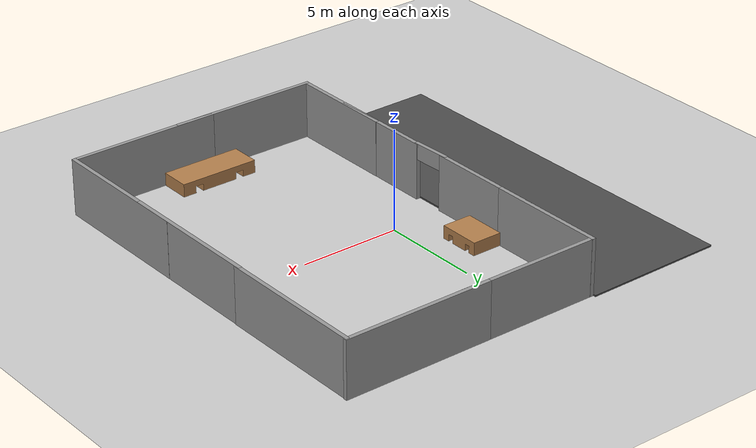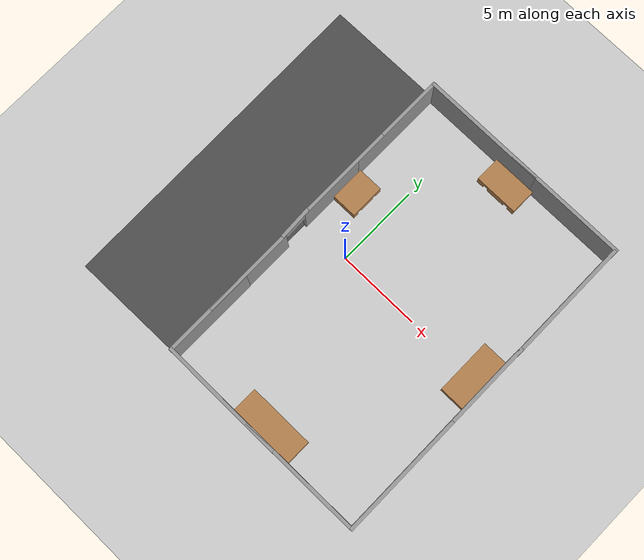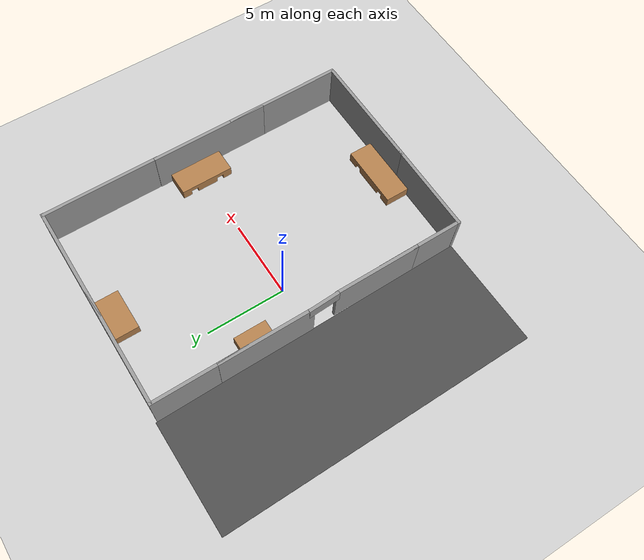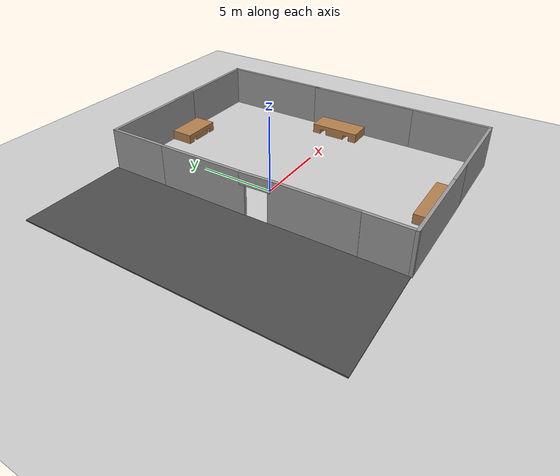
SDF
<sdf version="1.7">
 <world name="default">
  <light name="sun" type="directional">
   <pose>0 0 10 0 -0 0</pose>
   <diffuse>0.8 0.8 0.8 1</diffuse>
   <specular>0.2 0.2 0.2 1</specular>
   <attenuation>
    <range>1000</range>
    <constant>0.9</constant>
    <linear>0.01</linear>
    <quadratic>0.001</quadratic>
   </attenuation>
   <direction>-0.5 0.1 -0.9</direction>
   <spot><inner_angle>0</inner_angle><outer_angle>0</outer_angle><falloff>0</falloff></spot>
  </light>
  <model name="ground_plane">
   <static>1</static>
   <link name="link">
    <collision name="collision">
     <geometry><plane><normal>0 0 1</normal><size>100 100</size></plane></geometry>
     <surface><friction><ode><mu>100</mu><mu2>50</mu2></ode></friction></surface>
    </collision>
    <visual name="visual">
     <cast_shadows>0</cast_shadows>
     <geometry><plane><normal>0 0 1</normal><size>100 100</size></plane></geometry>
     <material>
      <script><uri>file://media/materials/scripts/gazebo.material</uri><name>Gazebo/Grey</name></script>
     </material>
    </visual>
   </link>
  </model>
  <gravity>0 0 -9.8</gravity>
  <magnetic_field>6e-06 2.3e-05 -4.2e-05</magnetic_field>
  <atmosphere type="adiabatic"/>
  <physics type="ode">
   <max_step_size>0.001</max_step_size>
   <real_time_factor>1</real_time_factor>
   <real_time_update_rate>1000</real_time_update_rate>
  </physics>
  <scene><ambient>0.4 0.4 0.4 1</ambient><background>0.7 0.7 0.7 1</background><shadows>1</shadows></scene>
  <spherical_coordinates>
   <surface_model>EARTH_WGS84</surface_model>
   <latitude_deg>0</latitude_deg>
   <longitude_deg>0</longitude_deg>
   <elevation>0</elevation>
   <heading_deg>0</heading_deg>
  </spherical_coordinates>
  <model name="grey_wall">
   <static>1</static>
   <link name="link">
    <pose>0 0 1.4 0 -0 0</pose>
    <collision name="collision"><geometry><box><size>7.5 0.2 2.8</size></box></geometry></collision>
    <visual name="visual">
     <cast_shadows>0</cast_shadows>
     <geometry><box><size>7.5 0.2 2.8</size></box></geometry>
     <material>
      <script>
       <uri>model://grey_wall/materials/scripts</uri>
       <uri>model://grey_wall/materials/textures</uri>
       <name>vrc/grey_wall</name>
      </script>
     </material>
    </visual>
   </link>
   <pose>6.56813 9.72694 0 0 -0 0</pose>
  </model>
  <model name="grey_wall_0">
   <static>1</static>
   <link name="link">
    <pose>0 0 1.4 0 -0 0</pose>
    <collision name="collision"><geometry><box><size>7.5 0.2 2.8</size></box></geometry></collision>
    <visual name="visual">
     <cast_shadows>0</cast_shadows>
     <geometry><box><size>7.5 0.2 2.8</size></box></geometry>
     <material>
      <script>
       <uri>model://grey_wall/materials/scripts</uri>
       <uri>model://grey_wall/materials/textures</uri>
       <name>vrc/grey_wall</name>
      </script>
     </material>
    </visual>
   </link>
   <pose>0.835174 9.72365 0 0 -0 0</pose>
  </model>
  <model name="grey_wall_1">
   <static>1</static>
   <link name="link">
    <pose>0 0 1.4 0 -0 0</pose>
    <collision name="collision"><geometry><box><size>7.5 0.2 2.8</size></box></geometry></collision>
    <visual name="visual">
     <cast_shadows>0</cast_shadows>
     <geometry><box><size>7.5 0.2 2.8</size></box></geometry>
     <material>
      <script>
       <uri>model://grey_wall/materials/scripts</uri>
       <uri>model://grey_wall/materials/textures</uri>
       <name>vrc/grey_wall</name>
      </script>
     </material>
    </visual>
   </link>
   <pose>6.47343 -10.0659 0 0 -0 0</pose>
  </model>
  <model name="grey_wall_2">
   <static>1</static>
   <link name="link">
    <pose>0 0 1.4 0 -0 0</pose>
    <collision name="collision"><geometry><box><size>7.5 0.2 2.8</size></box></geometry></collision>
    <visual name="visual">
     <cast_shadows>0</cast_shadows>
     <geometry><box><size>7.5 0.2 2.8</size></box></geometry>
     <material>
      <script>
       <uri>model://grey_wall/materials/scripts</uri>
       <uri>model://grey_wall/materials/textures</uri>
       <name>vrc/grey_wall</name>
      </script>
     </material>
    </visual>
   </link>
   <pose>0.933666 -10.0566 -0 0 0 -0.005759</pose>
  </model>
  <model name="grey_wall_3">
   <static>1</static>
   <link name="link">
    <pose>0 0 1.4 0 -0 0</pose>
    <collision name="collision"><geometry><box><size>7.5 0.2 2.8</size></box></geometry></collision>
    <visual name="visual">
     <cast_shadows>0</cast_shadows>
     <geometry><box><size>7.5 0.2 2.8</size></box></geometry>
     <material>
      <script>
       <uri>model://grey_wall/materials/scripts</uri>
       <uri>model://grey_wall/materials/textures</uri>
       <name>vrc/grey_wall</name>
      </script>
     </material>
    </visual>
   </link>
   <pose>10.1917 -1.19868 0 0 -0 1.5731</pose>
  </model>
  <model name="grey_wall_3_clone">
   <static>1</static>
   <link name="link">
    <pose>0 0 1.4 0 -0 0</pose>
    <collision name="collision"><geometry><box><size>7.5 0.2 2.8</size></box></geometry></collision>
    <visual name="visual">
     <cast_shadows>0</cast_shadows>
     <geometry><box><size>7.5 0.2 2.8</size></box></geometry>
     <material>
      <script>
       <uri>model://grey_wall/materials/scripts</uri>
       <uri>model://grey_wall/materials/textures</uri>
       <name>vrc/grey_wall</name>
      </script>
     </material>
    </visual>
   </link>
   <pose>10.1984 6.01912 0 0 -0 1.5731</pose>
  </model>
  <model name="grey_wall_3_clone_0">
   <static>1</static>
   <link name="link">
    <pose>0 0 1.4 0 -0 0</pose>
    <collision name="collision"><geometry><box><size>6.5 0.2 2.8</size></box></geometry></collision>
    <visual name="visual">
     <cast_shadows>0</cast_shadows>
     <geometry><box><size>6 0.2 2.8</size></box></geometry>
     <material>
      <script>
       <uri>model://grey_wall/materials/scripts</uri>
       <uri>model://grey_wall/materials/textures</uri>
       <name>vrc/grey_wall</name>
      </script>
     </material>
    </visual>
   </link>
   <pose>-2.84249 2.78175 0 0 -0 1.5731</pose>
  </model>
  <model name="grey_wall_3_clone_1">
   <static>1</static>
   <link name="link">
    <pose>0 0 1.4 0 -0 0</pose>
    <collision name="collision"><geometry><box><size>5.5 0.2 2.8</size></box></geometry></collision>
    <visual name="visual">
     <cast_shadows>0</cast_shadows>
     <geometry><box><size>5.5 0.2 2.8</size></box></geometry>
     <material>
      <script>
       <uri>model://grey_wall/materials/scripts</uri>
       <uri>model://grey_wall/materials/textures</uri>
       <name>vrc/grey_wall</name>
      </script>
     </material>
    </visual>
   </link>
   <pose>-2.73478 -4.43119 0 0 -0 1.5731</pose>
  </model>
  <model name="grey_wall_3_clone_2">
   <static>1</static>
   <link name="link">
    <collision name="collision"><geometry><box><size>2 0.2 0.8</size></box></geometry></collision>
    <visual name="visual">
     <cast_shadows>0</cast_shadows>
     <geometry><box><size>2 0.2 0.8</size></box></geometry>
     <material>
      <script>
       <uri>model://grey_wall/materials/scripts</uri>
       <uri>model://grey_wall/materials/textures</uri>
       <name>vrc/grey_wall</name>
      </script>
     </material>
    </visual>
   </link>
   <pose>-2.80899 -0.86948 2.41288 0 -0 1.61557</pose>
  </model>
  <model name="asphalt_plane">
   <static>1</static>
   <link name="link">
    <collision name="collision"><geometry><box><size>7 20 1e-05</size></box></geometry></collision>
    <visual name="visual">
     <cast_shadows>0</cast_shadows>
     <geometry><box><size>7 20 0.1</size></box></geometry>
     <material>
      <script>
       <uri>model://asphalt_plane/materials/scripts</uri>
       <uri>model://asphalt_plane/materials/textures</uri>
       <name>vrc/asphalt</name>
      </script>
     </material>
    </visual>
   </link>
   <pose>-6.40578 -0.106897 0 0 -0 0.00896</pose>
  </model>
  <model name="grey_wall_3_clone_0_clone">
   <static>1</static>
   <link name="link">
    <pose>0 0 1.4 0 -0 0</pose>
    <collision name="collision"><geometry><box><size>6.5 0.2 2.8</size></box></geometry></collision>
    <visual name="visual">
     <cast_shadows>0</cast_shadows>
     <geometry><box><size>6 0.2 2.8</size></box></geometry>
     <material>
      <script>
       <uri>model://grey_wall/materials/scripts</uri>
       <uri>model://grey_wall/materials/textures</uri>
       <name>vrc/grey_wall</name>
      </script>
     </material>
    </visual>
   </link>
   <pose>-2.84799 6.82893 0 0 -0 1.5731</pose>
  </model>
  <model name="grey_wall_3_clone_1_clone">
   <static>1</static>
   <link name="link">
    <pose>0 0 1.4 0 -0 0</pose>
    <collision name="collision"><geometry><box><size>5.5 0.2 2.8</size></box></geometry></collision>
    <visual name="visual">
     <cast_shadows>0</cast_shadows>
     <geometry><box><size>5.5 0.2 2.8</size></box></geometry>
     <material>
      <script>
       <uri>model://grey_wall/materials/scripts</uri>
       <uri>model://grey_wall/materials/textures</uri>
       <name>vrc/grey_wall</name>
      </script>
     </material>
    </visual>
   </link>
   <pose>-2.71713 -7.39196 0 0 -0 1.5731</pose>
  </model>
  <model name="grey_wall_3_clone_3">
   <static>1</static>
   <link name="link">
    <pose>0 0 1.4 0 -0 0</pose>
    <collision name="collision"><geometry><box><size>7.5 0.2 2.8</size></box></geometry></collision>
    <visual name="visual">
     <cast_shadows>0</cast_shadows>
     <geometry><box><size>7.5 0.2 2.8</size></box></geometry>
     <material>
      <script>
       <uri>model://grey_wall/materials/scripts</uri>
       <uri>model://grey_wall/materials/textures</uri>
       <name>vrc/grey_wall</name>
      </script>
     </material>
    </visual>
   </link>
   <pose>10.2075 -6.3912 0 0 -0 1.5731</pose>
  </model>
  <model name="dockstation1">
   <link name="link_0">
    <inertial>
     <mass>1</mass>
     <inertia>
      <ixx>0.166667</ixx>
      <ixy>0</ixy>
      <ixz>0</ixz>
      <iyy>0.166667</iyy>
      <iyz>0</iyz>
      <izz>0.166667</izz>
     </inertia>
    </inertial>
    <pose>1e-06 1e-06 0 0 -0 0.001492</pose>
    <visual name="visual">
     <geometry>
      <mesh>
       <uri>/home/sagni/catkin_wsthesis/src/robothesis/meshes/tables/new_table1.dae</uri>
       <scale>0.5 0.5 0.5</scale>
      </mesh>
     </geometry>
     <material>
      <lighting>1</lighting>
      <script><uri>file://media/materials/scripts/gazebo.material</uri><name>Gazebo/wood</name></script>
      <shader type="pixel"><normal_map>__default__</normal_map></shader>
      <ambient>0.3 0.3 0.3 1</ambient>
      <diffuse>0.7 0.7 0.7 1</diffuse>
      <specular>0.01 0.01 0.01 1</specular>
      <emissive>0 0 0 1</emissive>
     </material>
    </visual>
    <collision name="collision">
     <geometry>
      <mesh>
       <uri>/home/sagni/catkin_wsthesis/src/robothesis/meshes/tables/new_table1.dae</uri>
       <scale>0.5 0.5 0.5</scale>
      </mesh>
     </geometry>
     <surface>
      <friction>
       <ode><mu>1</mu><mu2>1</mu2><fdir1>0 0 0</fdir1><slip1>0</slip1><slip2>0</slip2></ode>
       <torsional>
        <coefficient>1</coefficient>
        <patch_radius>0</patch_radius>
        <surface_radius>0</surface_radius>
        <use_patch_radius>1</use_patch_radius>
        <ode><slip>0</slip></ode>
       </torsional>
      </friction>
      <bounce><restitution_coefficient>0</restitution_coefficient><threshold>1e+06</threshold></bounce>
      <contact>
       <collide_without_contact>0</collide_without_contact>
       <collide_without_contact_bitmask>1</collide_without_contact_bitmask>
       <collide_bitmask>1</collide_bitmask>
       <ode>
        <soft_cfm>0</soft_cfm>
        <soft_erp>0.2</soft_erp>
        <kp>1e+13</kp>
        <kd>1</kd>
        <max_vel>0.01</max_vel>
        <min_depth>0</min_depth>
       </ode>
       <bullet>
        <split_impulse>1</split_impulse>
        <split_impulse_penetration_threshold>-0.01</split_impulse_penetration_threshold>
        <soft_cfm>0</soft_cfm>
        <soft_erp>0.2</soft_erp>
        <kp>1e+13</kp>
        <kd>1</kd>
       </bullet>
      </contact>
     </surface>
    </collision>
   </link>
   <static>0</static>
   <pose>3.53342 -9.21297 -0.002713 0 -0 -0.002937</pose>
  </model>
  <model name="docksatation2">
   <link name="link_1">
    <inertial>
     <mass>1</mass>
     <inertia>
      <ixx>0.166667</ixx>
      <ixy>0</ixy>
      <ixz>0</ixz>
      <iyy>0.166667</iyy>
      <iyz>0</iyz>
      <izz>0.166667</izz>
     </inertia>
    </inertial>
    <pose>-1e-06 0 0 0 0 -1.57079</pose>
    <visual name="visual">
     <geometry>
      <mesh>
       <uri>/home/sagni/catkin_wsthesis/src/robothesis/meshes/tables/new_table2.dae</uri>
       <scale>0.5 0.5 0.5</scale>
      </mesh>
     </geometry>
     <material>
      <lighting>1</lighting>
      <script><uri>file://media/materials/scripts/gazebo.material</uri><name>Gazebo/wood</name></script>
      <shader type="pixel"><normal_map>__default__</normal_map></shader>
      <ambient>0.3 0.3 0.3 1</ambient>
      <diffuse>0.7 0.7 0.7 1</diffuse>
      <specular>0.01 0.01 0.01 1</specular>
      <emissive>0 0 0 1</emissive>
     </material>
    </visual>
    <collision name="collision">
     <geometry>
      <mesh>
       <uri>/home/sagni/catkin_wsthesis/src/robothesis/meshes/tables/new_table2.dae</uri>
       <scale>0.5 0.5 0.5</scale>
      </mesh>
     </geometry>
     <surface>
      <friction>
       <ode><mu>1</mu><mu2>1</mu2><fdir1>0 0 0</fdir1><slip1>0</slip1><slip2>0</slip2></ode>
       <torsional>
        <coefficient>1</coefficient>
        <patch_radius>0</patch_radius>
        <surface_radius>0</surface_radius>
        <use_patch_radius>1</use_patch_radius>
        <ode><slip>0</slip></ode>
       </torsional>
      </friction>
      <bounce><restitution_coefficient>0</restitution_coefficient><threshold>1e+06</threshold></bounce>
      <contact>
       <collide_without_contact>0</collide_without_contact>
       <collide_without_contact_bitmask>1</collide_without_contact_bitmask>
       <collide_bitmask>1</collide_bitmask>
       <ode>
        <soft_cfm>0</soft_cfm>
        <soft_erp>0.2</soft_erp>
        <kp>1e+13</kp>
        <kd>1</kd>
        <max_vel>0.01</max_vel>
        <min_depth>0</min_depth>
       </ode>
       <bullet>
        <split_impulse>1</split_impulse>
        <split_impulse_penetration_threshold>-0.01</split_impulse_penetration_threshold>
        <soft_cfm>0</soft_cfm>
        <soft_erp>0.2</soft_erp>
        <kp>1e+13</kp>
        <kd>1</kd>
       </bullet>
      </contact>
     </surface>
    </collision>
   </link>
   <static>0</static>
   <pose>9.33872 0.083964 -0.002717 0 5e-06 0.002285</pose>
  </model>
  <model name="dockstation4">
   <link name="link_3">
    <inertial>
     <mass>1</mass>
     <inertia>
      <ixx>0.166667</ixx>
      <ixy>0</ixy>
      <ixz>0</ixz>
      <iyy>0.166667</iyy>
      <iyz>0</iyz>
      <izz>0.166667</izz>
     </inertia>
    </inertial>
    <pose>4e-06 4e-06 0 0 0 -1.57783</pose>
    <visual name="visual">
     <geometry>
      <mesh>
       <uri>/home/sagni/catkin_wsthesis/src/robothesis/meshes/tables/new_table4.dae</uri>
       <scale>0.5 0.5 0.5</scale>
      </mesh>
     </geometry>
     <material>
      <lighting>1</lighting>
      <script><uri>file://media/materials/scripts/gazebo.material</uri><name>Gazebo/wood</name></script>
      <shader type="pixel"><normal_map>__default__</normal_map></shader>
      <ambient>0.3 0.3 0.3 1</ambient>
      <diffuse>0.7 0.7 0.7 1</diffuse>
      <specular>0.01 0.01 0.01 1</specular>
      <emissive>0 0 0 1</emissive>
     </material>
    </visual>
    <collision name="collision">
     <geometry>
      <mesh>
       <uri>/home/sagni/catkin_wsthesis/src/robothesis/meshes/tables/new_table4.dae</uri>
       <scale>0.5 0.5 0.5</scale>
      </mesh>
     </geometry>
     <surface>
      <friction>
       <ode><mu>1</mu><mu2>1</mu2><fdir1>0 0 0</fdir1><slip1>0</slip1><slip2>0</slip2></ode>
       <torsional>
        <coefficient>1</coefficient>
        <patch_radius>0</patch_radius>
        <surface_radius>0</surface_radius>
        <use_patch_radius>1</use_patch_radius>
        <ode><slip>0</slip></ode>
       </torsional>
      </friction>
      <bounce><restitution_coefficient>0</restitution_coefficient><threshold>1e+06</threshold></bounce>
      <contact>
       <collide_without_contact>0</collide_without_contact>
       <collide_without_contact_bitmask>1</collide_without_contact_bitmask>
       <collide_bitmask>1</collide_bitmask>
       <ode>
        <soft_cfm>0</soft_cfm>
        <soft_erp>0.2</soft_erp>
        <kp>1e+13</kp>
        <kd>1</kd>
        <max_vel>0.01</max_vel>
        <min_depth>0</min_depth>
       </ode>
       <bullet>
        <split_impulse>1</split_impulse>
        <split_impulse_penetration_threshold>-0.01</split_impulse_penetration_threshold>
        <soft_cfm>0</soft_cfm>
        <soft_erp>0.2</soft_erp>
        <kp>1e+13</kp>
        <kd>1</kd>
       </bullet>
      </contact>
     </surface>
    </collision>
   </link>
   <static>0</static>
   <pose>-1.99042 2.97284 -0.002713 0 -0 0.00715</pose>
  </model>
  <model name="dockingstation3">
   <link name="link_0">
    <inertial>
     <mass>1</mass>
     <inertia>
      <ixx>0.166667</ixx>
      <ixy>0</ixy>
      <ixz>0</ixz>
      <iyy>0.166667</iyy>
      <iyz>0</iyz>
      <izz>0.166667</izz>
     </inertia>
    </inertial>
    <pose>4e-06 -3e-06 0 0 -0 0</pose>
    <visual name="visual">
     <geometry>
      <mesh>
       <uri>/home/sagni/catkin_wsthesis/src/robothesis/meshes/tables/new_table3.dae</uri>
       <scale>0.5 0.5 0.5</scale>
      </mesh>
     </geometry>
     <material>
      <lighting>1</lighting>
      <script><uri>file://media/materials/scripts/gazebo.material</uri><name>Gazebo/wood</name></script>
      <shader type="pixel"><normal_map>__default__</normal_map></shader>
      <ambient>0.3 0.3 0.3 1</ambient>
      <diffuse>0.7 0.7 0.7 1</diffuse>
      <specular>0.01 0.01 0.01 1</specular>
      <emissive>0 0 0 1</emissive>
     </material>
    </visual>
    <collision name="collision">
     <geometry>
      <mesh>
       <uri>/home/sagni/catkin_wsthesis/src/robothesis/meshes/tables/new_table3.dae</uri>
       <scale>0.5 0.5 0.5</scale>
      </mesh>
     </geometry>
     <surface>
      <friction>
       <ode><mu>1</mu><mu2>1</mu2><fdir1>0 0 0</fdir1><slip1>0</slip1><slip2>0</slip2></ode>
       <torsional>
        <coefficient>1</coefficient>
        <patch_radius>0</patch_radius>
        <surface_radius>0</surface_radius>
        <use_patch_radius>1</use_patch_radius>
        <ode><slip>0</slip></ode>
       </torsional>
      </friction>
      <bounce><restitution_coefficient>0</restitution_coefficient><threshold>1e+06</threshold></bounce>
      <contact>
       <collide_without_contact>0</collide_without_contact>
       <collide_without_contact_bitmask>1</collide_without_contact_bitmask>
       <collide_bitmask>1</collide_bitmask>
       <ode>
        <soft_cfm>0</soft_cfm>
        <soft_erp>0.2</soft_erp>
        <kp>1e+13</kp>
        <kd>1</kd>
        <max_vel>0.01</max_vel>
        <min_depth>0</min_depth>
       </ode>
       <bullet>
        <split_impulse>1</split_impulse>
        <split_impulse_penetration_threshold>-0.01</split_impulse_penetration_threshold>
        <soft_cfm>0</soft_cfm>
        <soft_erp>0.2</soft_erp>
        <kp>1e+13</kp>
        <kd>1</kd>
       </bullet>
      </contact>
     </surface>
    </collision>
   </link>
   <static>0</static>
   <pose>3.49331 8.87345 -0.002971 0 -0 0.0001</pose>
  </model>
 </world>
</sdf>
